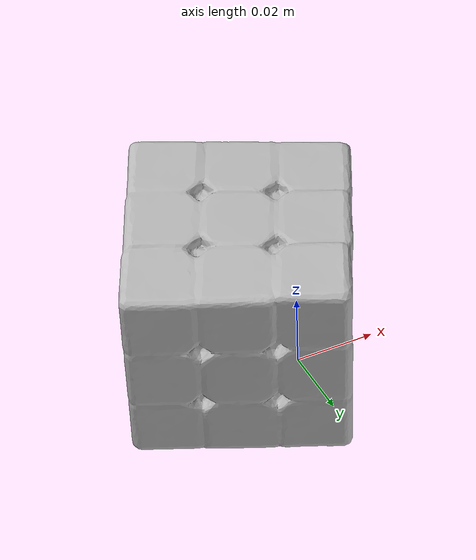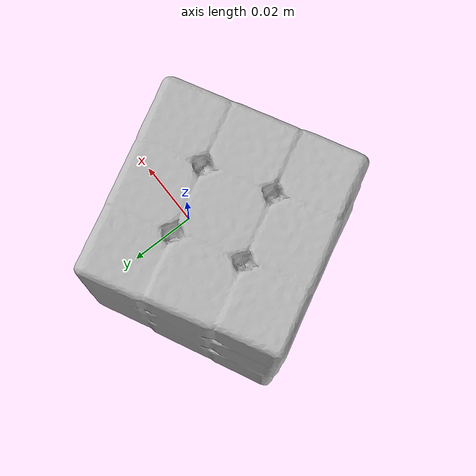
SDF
<?xml version='1.0'?>
<sdf version="1.4">
  <model name="rubiks_cube">
    <static>false</static>
    <link name="link">
      <inertial>
        <pose>-0.01621904987834239 -0.0004852905644285978 0.028589928178413306 2.364833332193811 -0.16473372100789463 -2.6692854948354134</pose>
        <mass>0.00018287731685751214</mass>
        <inertia>
          <ixx>9.852040380736427e-08</ixx>
          <ixy>2.8814286138676175e-24</ixy>
          <ixz>-4.881258528024058e-24</ixz>
          <iyy>9.83357739187614e-08</iyy>
          <iyz>1.7403347085320402e-23</iyz>
          <izz>9.818197457535541e-08</izz>
        </inertia>
      </inertial>
      <collision name="collision">
        <geometry>
          <mesh>
            <!-- Use a downsampled mesh for collisions -->
            <uri>model://077_rubiks_cube/google_16k/077_rubiks_cube.obj</uri>
            </mesh>
        </geometry>
        <surface>
          <friction>
            <ode>
              <mu>0.9</mu>
              <mu2>0.9</mu2>
            </ode>
          </friction>
          <contact>
            <ode>
              <kp>1000000000000.0</kp>
              <kd>1</kd>
              <min_depth>0.0001</min_depth>
              <max_vel>0.01</max_vel>
            </ode>
          </contact>
          <bounce>
            <restitution_coefficient>0.1</restitution_coefficient>
            <threshold>1000.0</threshold>
          </bounce>
        </surface>
      </collision>
      <visual name="visual">
        <geometry>
          <mesh>
            <uri>model://077_rubiks_cube/google_16k/077_rubiks_cube.dae</uri>
            </mesh>
        </geometry>
      </visual>
    </link>
  </model>
</sdf>
